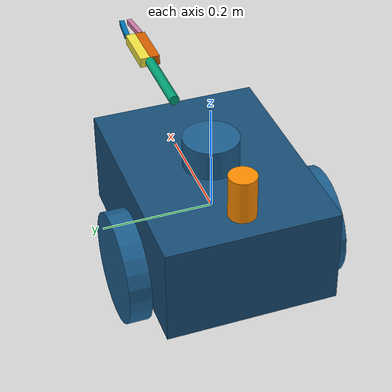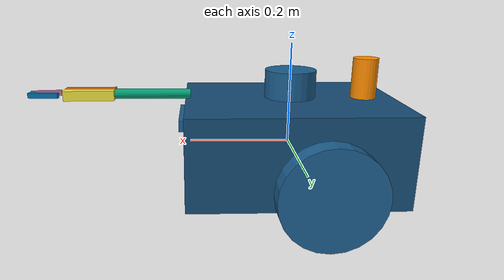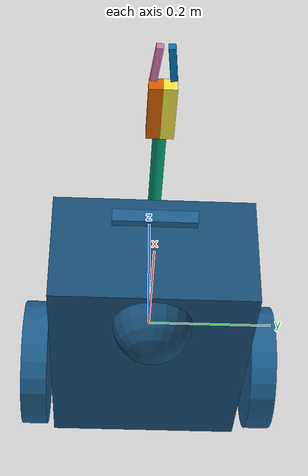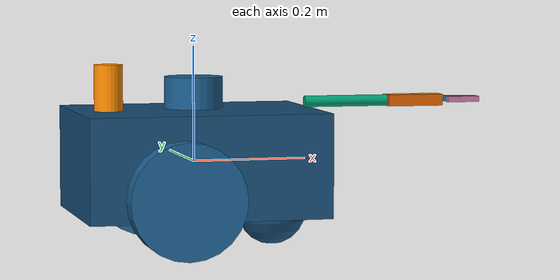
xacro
<?xml version="1.0"?>
<robot name="explorer_robot"
  xmlns:xacro="http://ros.org/wiki/xacro">

  <!-- Definicao de Algumas Contantes -->

  <xacro:property name="base_width" value="0.31"/> <!-- Largura da base -->
  <xacro:property name="base_length" value="0.42"/> <!-- Comprimento da base -->
  <xacro:property name="base_height" value="0.18"/> <!-- Altura da base -->

  <xacro:property name="wheel_radius" value="0.10"/> <!-- Raio da roda -->
  <xacro:property name="wheel_width" value="0.04"/> <!-- Largura da roda -->
  <xacro:property name="wheel_ygap" value="0.025"/> <!-- Distancia entre as rodas -->
  <xacro:property name="wheel_zoff" value="0.05"/> <!-- Deslocamento da roda em Z -->
  <xacro:property name="wheel_xoff" value="0.05"/> <!-- Deslocamento da roda em X -->

  <xacro:property name="caster_xoff" value="0.14"/> <!-- Deslocamento do caster em X -->

  <!-- Definição de algumas propriedades inerciais -->
  <xacro:macro name="box_inertia" params="m w h d">
    <inertial>
      <origin xyz="0 0 0" rpy="${pi/2} 0 ${pi/2}"/>
      <mass value="${m}"/>
      <inertia ixx="${(m/12) * (h*h + d*d)}" ixy="0.0" ixz="0.0" iyy="${(m/12) * (w*w + d*d)}" iyz="0.0" izz="${(m/12) * (w*w + h*h)}"/>
    </inertial>
  </xacro:macro>

  <xacro:macro name="cylinder_inertia" params="m r h">
    <inertial>
      <origin xyz="0 0 0" rpy="${pi/2} 0 0" />
      <mass value="${m}"/>
      <inertia ixx="${(m/12) * (3*r*r + h*h)}" ixy = "0" ixz = "0" iyy="${(m/12) * (3*r*r + h*h)}" iyz = "0" izz="${(m/2) * (r*r)}"/>
    </inertial>
  </xacro:macro>

  <xacro:macro name="sphere_inertia" params="m r">
    <inertial>
      <mass value="${m}"/>
      <inertia ixx="${(2/5) * m * (r*r)}" ixy="0.0" ixz="0.0" iyy="${(2/5) * m * (r*r)}" iyz="0.0" izz="${(2/5) * m * (r*r)}"/>
    </inertial>
  </xacro:macro>

  <!-- Definindo plugin para publiar a pose do robo -->
  <gazebo>
    <plugin filename="libignition-gazebo-pose-publisher-system" name="ignition::gazebo::systems::PosePublisher">
      <publish_link_pose>false</publish_link_pose>
      <publish_model_pose>true</publish_model_pose>
      <publish_nested_model_pose>true</publish_nested_model_pose>
      <use_pose_vector_msg>false</use_pose_vector_msg>
      <publish_visual_pose>false</publish_visual_pose>
      <update_frequency>10</update_frequency>
    </plugin>
  </gazebo>

  <!-- Definindo a Base do Robô -->
  <link name="base_link">
    <visual>
      <geometry>
        <box size="${base_length} ${base_width} ${base_height}"/>
      </geometry>
      <material name="DarkBlue">
        <color rgba="0.09 0.30 0.46 1.0"/>
      </material>
    </visual>

    <collision>
      <geometry>
        <box size="${base_length} ${base_width} ${base_height}"/>
      </geometry>
    </collision>

    <xacro:box_inertia m="3" w="${base_width}" d="${base_length}" h="${base_height}"/>
  </link>

  <!-- Definindo a Base do Robô (base footprint) -->
  <link name="base_footprint">
    <xacro:box_inertia m="0" w="0" d="0" h="0"/>
  </link>

  <joint name="base_joint" type="fixed">
    <parent link="base_link"/>
    <child link="base_footprint"/>
    <origin xyz="0.0 0.0 ${-(wheel_radius+wheel_zoff)}" rpy="0 0 0"/>
  </joint>

  <link name="ballast_link">
    <inertial>
      <origin xyz="0 0 0" rpy="0 0 0"/>
      <mass value="8.0"/>
      <inertia ixx="0.06" ixy="0" ixz="0" iyy="0.06" iyz="0" izz="0.06"/>
    </inertial>
    <collision>
      <geometry><box size="0.20 0.20 0.04"/></geometry>
    </collision>
  </link>
  <joint name="ballast_joint" type="fixed">
    <parent link="base_link"/>
    <child link="ballast_link"/>
    <origin xyz="0 0 -0.12" rpy="0 0 0"/>
  </joint>

  <!-- Definindo as Rodas do Robô -->
  <!-- Parâmetros: prefix: drivewhl_l, drivewhl_r -->
  <xacro:macro name="wheel" params="prefix x_reflect y_reflect">
    <link name="${prefix}_link">
      <visual>
        <origin xyz="0 0 0" rpy="${pi/2} 0 0"/>
        <geometry>
          <cylinder radius="${wheel_radius}" length="${wheel_width}"/>
        </geometry>
        <material name="LightBlue">
          <color rgba="0.11 0.37 0.56 1.0"/>
        </material>
      </visual>

      <collision>
        <origin xyz="0 0 0" rpy="${pi/2} 0 0"/>
        <geometry>
          <cylinder radius="${wheel_radius}" length="${wheel_width}"/>
        </geometry>
      </collision>

      <xacro:cylinder_inertia m="1.0" r="${wheel_radius}" h="${wheel_width}"/>
    </link>

    <joint name="${prefix}_joint" type="continuous">
      <parent link="base_link"/>
      <child link="${prefix}_link"/>
      <origin xyz="${x_reflect*wheel_xoff} ${y_reflect*(base_width/2+wheel_ygap)} ${-wheel_zoff}" rpy="0 0 0"/>
      <axis xyz="0 1 0"/>
      <dynamics damping="0.2"/>
    </joint>
  </xacro:macro>

  <xacro:wheel prefix="drivewhl_l" x_reflect="-1" y_reflect="1" />
  <xacro:wheel prefix="drivewhl_r" x_reflect="-1" y_reflect="-1" />

  <link name="front_caster">
    <visual>
      <geometry>
        <sphere radius="${(wheel_radius+wheel_zoff-(base_height/2))}"/>
      </geometry>
      <material name="DarkBlue">
        <color rgba="0.09 0.30 0.46 1.0"/>
      </material>
    </visual>

    <collision>
      <origin xyz="0 0 0" rpy="0 0 0"/>
      <geometry>
        <sphere radius="${(wheel_radius+wheel_zoff-(base_height/2))}"/>
      </geometry>
    </collision>

    <xacro:sphere_inertia m="0.005" r="${(wheel_radius+wheel_zoff-(base_height/2))}"/>
  </link>

  <joint name="caster_joint" type="fixed">
    <parent link="base_link"/>
    <child link="front_caster"/>
    <origin xyz="${caster_xoff} 0.0 ${-(base_height/2)}" rpy="0 0 0"/>
  </joint>

  <!-- Rodizio frontal SEM ATRITO: esfera de junta fixa que desliza. Com atrito
       alto ela "agarra" em curvas e tomba o robo. mu=0 -> desliza livre. -->
  <gazebo reference="front_caster">
    <mu1>0.0</mu1>
    <mu2>0.0</mu2>
  </gazebo>

  <!-- Definindo a IMU do Robô (física) -->
  <link name="imu_link">
    <visual>
      <geometry>
        <box size="0.1 0.1 0.1"/>
      </geometry>
    </visual>

    <collision>
      <geometry>
        <box size="0.1 0.1 0.1"/>
      </geometry>
    </collision>

    <xacro:box_inertia m="0.001" w="0.1" d="0.1" h="0.1"/>
  </link>

  <!-- Definindo o sensor IMU no Gazebo -->
  <gazebo reference="imu_link">
    <sensor name="imu_sensor" type="imu">
      <ignition_frame_id>imu_link</ignition_frame_id>
      <plugin filename="ignition-gazebo-imu-system" name="ignition::gazebo::systems::Imu">
      </plugin>

      <topic>imu</topic>
      <always_on>true</always_on>
      <update_rate>50</update_rate>
      <visualize>true</visualize>
      <imu>
        <angular_velocity>
          <x>
            <noise type="gaussian">
              <mean>0.0</mean>
              <stddev>2e-4</stddev>
              <bias_mean>0.0000075</bias_mean>
              <bias_stddev>0.0000008</bias_stddev>
            </noise>
          </x>
          <y>
            <noise type="gaussian">
              <mean>0.0</mean>
              <stddev>2e-4</stddev>
              <bias_mean>0.0000075</bias_mean>
              <bias_stddev>0.0000008</bias_stddev>
            </noise>
          </y>
          <z>
            <noise type="gaussian">
              <mean>0.0</mean>
              <stddev>2e-4</stddev>
              <bias_mean>0.0000075</bias_mean>
              <bias_stddev>0.0000008</bias_stddev>
            </noise>
          </z>
        </angular_velocity>
        <linear_acceleration>
          <x>
            <noise type="gaussian">
              <mean>0.0</mean>
              <stddev>1.7e-2</stddev>
              <bias_mean>0.1</bias_mean>
              <bias_stddev>0.001</bias_stddev>
            </noise>
          </x>
          <y>
            <noise type="gaussian">
              <mean>0.0</mean>
              <stddev>1.7e-2</stddev>
              <bias_mean>0.1</bias_mean>
              <bias_stddev>0.001</bias_stddev>
            </noise>
          </y>
          <z>
            <noise type="gaussian">
              <mean>0.0</mean>
              <stddev>1.7e-2</stddev>
              <bias_mean>0.1</bias_mean>
              <bias_stddev>0.001</bias_stddev>
            </noise>
          </z>
        </linear_acceleration>
      </imu>
    </sensor>
  </gazebo>

  <!-- Ligando a IMU a base do robô -->
  <joint name="imu_joint" type="fixed">
    <parent link="base_link"/>
    <child link="imu_link"/>
    <origin xyz="0 0 0.01"/>
  </joint>

  <!-- Define um sistema de controle ROS 2 utilizando a infraestrutura ros2_control -->
  <ros2_control name="IgnitionSystem" type="system">

    <!-- Seção de hardware do sistema, onde é especificado o plugin que fará a ponte entre o Gazebo (Ignition) e o ros2_control -->
    <hardware>
      <!-- Plugin que permite a integração entre o Ignition Gazebo e o framework ros2_control -->
      <plugin>ign_ros2_control/IgnitionSystem</plugin>
    </hardware>

    <!-- Definição do primeiro atuador, correspondente à roda esquerda ("drive wheel left") -->
    <joint name="drivewhl_l_joint">

      <!-- Interface de comando de velocidade angular (por exemplo, rad/s) para essa junta -->
      <command_interface name="velocity">
        <!-- Valor mínimo permitido para o comando de velocidade (limite inferior) -->
        <param name="min">-1</param>
        <!-- Valor máximo permitido para o comando de velocidade (limite superior) -->
        <param name="max">1</param>
      </command_interface>

      <!-- Interface de estado que fornece a posição atual da junta (por exemplo, em radianos) -->
      <state_interface name="position"/>
      <!-- Interface de estado que fornece a velocidade atual da junta (por exemplo, em rad/s) -->
      <state_interface name="velocity"/>
    </joint>

    <!-- Definição do segundo atuador, correspondente à roda direita ("drive wheel right") -->
    <joint name="drivewhl_r_joint">

      <!-- Interface de comando de velocidade angular para essa junta -->
      <command_interface name="velocity">
        <!-- Limite inferior da velocidade que pode ser comandada -->
        <param name="min">-1</param>
        <!-- Limite superior da velocidade que pode ser comandada -->
        <param name="max">1</param>
      </command_interface>

      <!-- Interface de estado para leitura da posição da junta -->
      <state_interface name="position"/>

      <!-- Interface de estado para leitura da velocidade da junta -->
      <state_interface name="velocity"/>
    </joint>

    <joint name="gripper_extension">
      <command_interface name="position">
        <param name="min">-1.57075</param>
        <param name="max">0.2</param>
      </command_interface>
      <state_interface name="position"/>
      <state_interface name="velocity"/>
    </joint>

    <joint name="left_gripper_joint">
      <command_interface name="position">
        <param name="min">0.0</param>
        <param name="max">0.06</param>
      </command_interface>

      <state_interface name="position"/>
      <state_interface name="velocity"/>
    </joint>

    <joint name="right_gripper_joint">
      <command_interface name="position">
        <param name="min">-0.06</param>
        <param name="max">0.0</param>
      </command_interface>

      <state_interface name="position"/>
      <state_interface name="velocity"/>
    </joint>

  </ros2_control>

  <gazebo>
    <plugin filename="ign_ros2_control-system" name="ign_ros2_control::IgnitionROS2ControlPlugin">
      <parameters>$(find evolutionary_explorer_ros)/config/controller_config.yaml</parameters>
    </plugin>
  </gazebo>

  <link name="lidar_link">
    <inertial>
      <origin xyz="0 0 0" rpy="0 0 0"/>
      <mass value="0.125"/>
      <inertia ixx="0.001" ixy="0" ixz="0" iyy="0.001" iyz="0" izz="0.001" />
    </inertial>

    <collision>
      <origin xyz="0 0 0" rpy="0 0 0"/>
      <geometry>
        <cylinder radius="0.0508" length="0.055"/>
      </geometry>
    </collision>

    <visual>
      <origin xyz="0 0 0" rpy="0 0 0"/>
      <geometry>
        <cylinder radius="0.0508" length="0.055"/>
      </geometry>
      <material name="LightBlue">
        <color rgba="0.11 0.37 0.56 1.0"/>
      </material>
    </visual>
  </link>

  <joint name="lidar_joint" type="fixed">
    <parent link="base_link"/>
    <child link="lidar_link"/>
    <origin xyz="0 0 0.12" rpy="0 0 0"/>
  </joint>

  <gazebo reference="lidar_link">
    <sensor name="lidar" type="gpu_lidar">
      <ignition_frame_id>lidar_link</ignition_frame_id>
      <topic>scan</topic>
      <always_on>true</always_on>
      <visualize>true</visualize>
      <update_rate>5</update_rate>
      <ray>
        <scan>
          <horizontal>
            <samples>360</samples>
            <resolution>1.000000</resolution>
            <min_angle>0.000000</min_angle>
            <max_angle>6.280000</max_angle>
          </horizontal>
        </scan>
        <range>
          <min>0.120000</min>
          <max>3.5</max>
          <resolution>0.015000</resolution>
        </range>
        <noise>
          <type>gaussian</type>
          <mean>0.0</mean>
          <stddev>0.01</stddev>
        </noise>
      </ray>
    </sensor>
  </gazebo>

  <link name="camera_link">
    <visual>
      <origin xyz="0 0 0" rpy="0 0 0"/>
      <geometry>
        <box size="0.015 0.130 0.022"/>
      </geometry>
      <material name="LightBlue">
        <color rgba="0.11 0.37 0.56 1.0"/>
      </material>
    </visual>

    <collision>
      <origin xyz="0 0 0" rpy="0 0 0"/>
      <geometry>
        <box size="0.015 0.130 0.022"/>
      </geometry>
    </collision>

    <inertial>
      <origin xyz="0 0 0" rpy="0 0 0"/>
      <mass value="0.035"/>
      <inertia ixx="0.001" ixy="0" ixz="0" iyy="0.001" iyz="0" izz="0.001" />
    </inertial>
  </link>

  <joint name="camera_joint" type="fixed">
    <parent link="base_link"/>
    <child link="camera_link"/>
    <origin xyz="0.215 0 0.05" rpy="0 0 0"/>
  </joint>

  <link name="camera_frame"/>

  <joint name="camera_frame_joint" type="fixed">
    <origin xyz="0 0 0" rpy="${-pi/2} 0 ${-pi/2}"/>
    <parent link="camera_link"/>
    <child link="camera_frame"/>
  </joint>

  <gazebo reference="camera_link">

    <sensor name="robot_cam" type="segmentation">
      <topic>robot_cam</topic>
      <camera>
        <segmentation_type>semantic</segmentation_type>
        <horizontal_fov>1.57</horizontal_fov>
        <image>
          <width>320</width>
          <height>240</height>
        </image>
        <clip>
          <near>0.1</near>
          <far>100</far>
        </clip>
      </camera>
      <always_on>1</always_on>
      <update_rate>15</update_rate>
      <visualize>true</visualize>
    </sensor>

    <!-- Insere uma camera bounding box 2D completo -->

    <!-- Insere uma camera bounding box 2D -->

    <!-- Insere uma camera bounding box 3D -->

  </gazebo>

  <joint name="gripper_extension" type="revolute">

    <axis xyz="0 1 0"/>
    <limit effort="50.0" lower="-1.57075" upper="0.2" velocity="0.5"/>
    <origin rpy="0 0 0" xyz="0.2 0 0.1"/>

    <parent link="base_link"/>
    <child link="gripper_pole"/>
  </joint>

  <link name="gripper_pole">
    <visual>
      <geometry>
        <cylinder length="0.2" radius="0.01"/>
      </geometry>
      <origin rpy="0 1.57075 0" xyz="0.1 0 0"/>
    </visual>

    <!-- colisao da garra removida (T1): nao fisga o chao -->

    <xacro:cylinder_inertia m="0.01" r="0.01" h="0.2"/>

  </link>

  <joint name="left_gripper_joint" type="prismatic">
    <axis xyz="0 1 0"/>
    <limit effort="100.0" lower="0.0" upper="0.06" velocity="0.25"/>

    <origin rpy="0 0 0" xyz="0.2 0.01 0"/>
    <parent link="gripper_pole"/>
    <child link="left_gripper"/>
  </joint>

  <link name="left_gripper">
    <visual>
      <geometry>
        <box size="0.1 0.02 0.02"/> <!-- Comprimento, largura, altura -->
      </geometry>
    </visual>

    <!-- Colisao restaurada (T2): superficie de pega da garra para segurar
         a bandeira por atrito. -->
    <collision>
      <geometry>
        <box size="0.1 0.02 0.02"/>
      </geometry>
    </collision>

    <xacro:box_inertia m="0.015" w="0.02" h="0.02" d="0.1"/>

  </link>

  <joint name="left_tip_joint" type="fixed">
    <origin rpy="0.0 0 0" xyz="0.06 0.001 0"/>
    <parent link="left_gripper"/>
    <child link="left_tip"/>
  </joint>

  <link name="left_tip">

    <visual>
      <origin rpy="0 0 -0.1" xyz="0.03 0 0"/>
      <geometry>
        <box size="0.06 0.01 0.01"/>
      </geometry>
    </visual>

    <!-- Colisao restaurada (T2): ponta da pinca que toca a bandeira. -->
    <collision>
      <origin rpy="0 0 -0.1" xyz="0.03 0 0"/>
      <geometry>
        <box size="0.06 0.01 0.01"/>
      </geometry>
    </collision>

    <xacro:box_inertia m="0.005" w="0.01" h="0.01" d="0.06"/>

  </link>

  <joint name="right_gripper_joint" type="prismatic">
    <axis xyz="0 1 0"/>
    <limit effort="100.0" lower="-0.06" upper="0" velocity="0.25"/>
    <origin rpy="0 0 0" xyz="0.2 -0.01 0"/>

    <parent link="gripper_pole"/>
    <child link="right_gripper"/>
  </joint>

  <link name="right_gripper">
    <visual>
      <origin rpy="-3.1415 0 0" xyz="0 0 0"/>
      <geometry>
        <box size="0.1 0.02 0.02"/>
      </geometry>
    </visual>

    <!-- Colisao restaurada (T2): superficie de pega da garra. -->
    <collision>
      <origin rpy="-3.1415 0 0" xyz="0 0 0"/>
      <geometry>
        <box size="0.1 0.02 0.02"/>
      </geometry>
    </collision>

    <xacro:box_inertia m="0.015" w="0.02" h="0.02" d="0.1"/>

  </link>

  <joint name="right_tip_joint" type="fixed">
    <origin rpy="-3.1415 0 0" xyz="0.06 -0.001 0"/>
    <parent link="right_gripper"/>
    <child link="right_tip"/>
  </joint>

  <link name="right_tip">
    <visual>
      <origin rpy="0 0 -0.1" xyz="0.03 0 0"/>
      <geometry>
        <box size="0.06 0.01 0.01"/>
      </geometry>
    </visual>

    <!-- Colisao restaurada (T2): ponta da pinca que toca a bandeira. -->
    <collision>
      <origin rpy="0 0 -0.1" xyz="0.03 0 0"/>
      <geometry>
        <box size="0.06 0.01 0.01"/>
      </geometry>
    </collision>

    <xacro:box_inertia m="0.005" w="0.01" h="0.01" d="0.06"/>

  </link>

  <!-- Atrito alto nas superficies de pega da garra (T2): ajuda a segurar a
       bandeira por atrito durante o transporte, sem escorregar. -->
  <gazebo reference="left_gripper">
    <mu1>2.0</mu1>
    <mu2>2.0</mu2>
  </gazebo>
  <gazebo reference="right_gripper">
    <mu1>2.0</mu1>
    <mu2>2.0</mu2>
  </gazebo>
  <gazebo reference="left_tip">
    <mu1>2.0</mu1>
    <mu2>2.0</mu2>
  </gazebo>
  <gazebo reference="right_tip">
    <mu1>2.0</mu1>
    <mu2>2.0</mu2>
  </gazebo>

  <!-- MODIFICACAO DO GRUPO: "farol" sinalizador decorativo no topo do robo. -->
  <!-- Acrescenta um novo link + joint a estrutura base (criterio de         -->
  <!-- modelagem) e serve como elemento visual de identificacao/criatividade.-->
  <!-- Massa minima para nao alterar a dinamica do robo diferencial.         -->
  <link name="beacon_link">
    <visual>
      <origin xyz="0 0 0" rpy="0 0 0"/>
      <geometry>
        <cylinder radius="0.025" length="0.08"/>
      </geometry>
      <material name="BeaconOrange">
        <color rgba="1.0 0.55 0.0 1.0"/>
      </material>
    </visual>
    <collision>
      <origin xyz="0 0 0" rpy="0 0 0"/>
      <geometry>
        <cylinder radius="0.025" length="0.08"/>
      </geometry>
    </collision>
    <xacro:cylinder_inertia m="0.01" r="0.025" h="0.08"/>
  </link>

  <joint name="beacon_joint" type="fixed">
    <parent link="base_link"/>
    <child link="beacon_link"/>
    <!-- Atras do LIDAR, no topo da base -->
    <origin xyz="-0.15 0 ${base_height/2 + 0.04}" rpy="0 0 0"/>
  </joint>

  <!-- Garante a cor do farol tambem no Gazebo (Ignition) -->
  <gazebo reference="beacon_link">
    <visual>
      <material>
        <ambient>1.0 0.55 0.0 1.0</ambient>
        <diffuse>1.0 0.55 0.0 1.0</diffuse>
      </material>
    </visual>
  </gazebo>

</robot>
